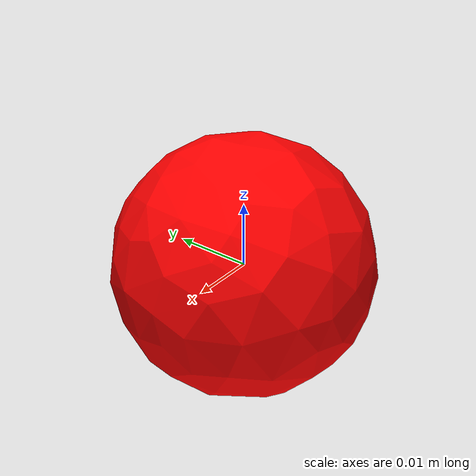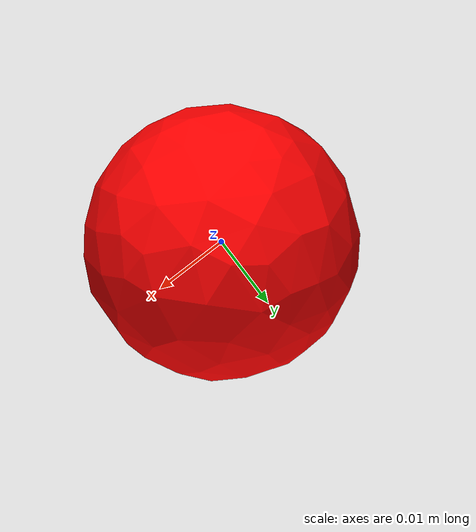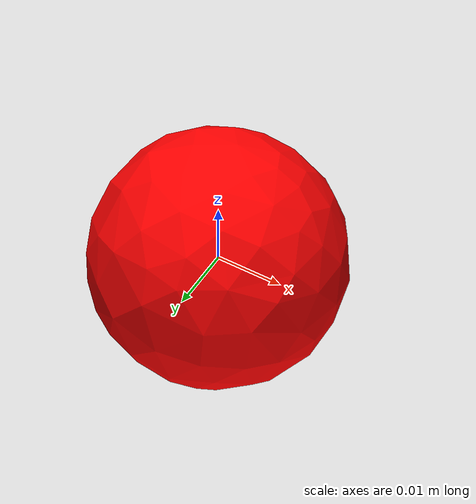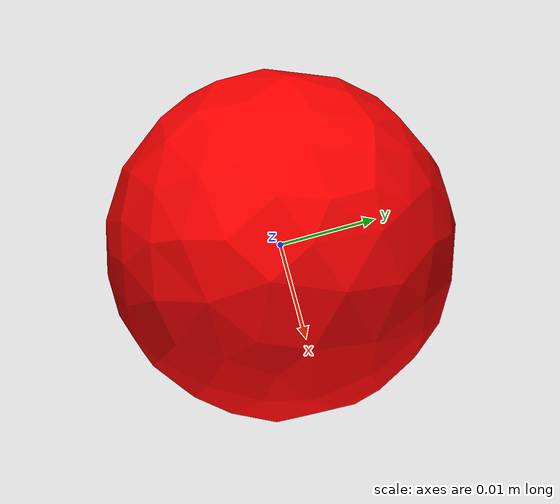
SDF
<?xml version="1.0" ?>
<sdf version="1.11">    <model name="dropper_marker">
        <static>false</static>
        <link name="link">
            <inertial>
                <mass>0.5</mass>
                <inertia>
                    <ixx>0.0002</ixx><ixy>0</ixy><ixz>0</ixz>
                    <iyy>0.0002</iyy><iyz>0</iyz>
                    <izz>0.0001</izz>
                </inertia>
            </inertial>
            <visual name="dropper_marker_visual">
                <geometry>
                    <mesh>
                        <uri>model://dropper_marker/mesh/dropper_marker.dae</uri>
                    </mesh>
                </geometry>
                <material>
                    <ambient>1 0 0 1</ambient>
                    <diffuse>1 0 0 1</diffuse>
                    <specular>0.1 0.1 0.1 1</specular>
                </material>
            </visual>
            <collision name="dropper_marker_collision">
                <geometry>
                    <mesh>
                        <uri>model://dropper_marker/mesh/dropper_marker.dae</uri>
                    </mesh>
                </geometry>
            </collision>
        </link>
    </model>
</sdf>
